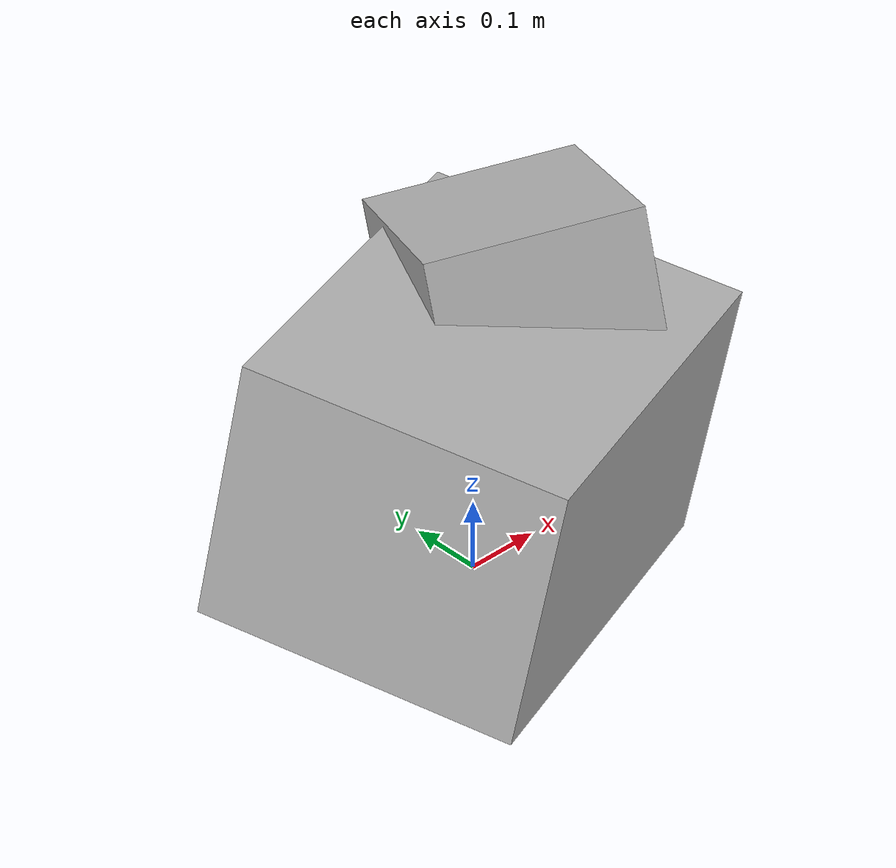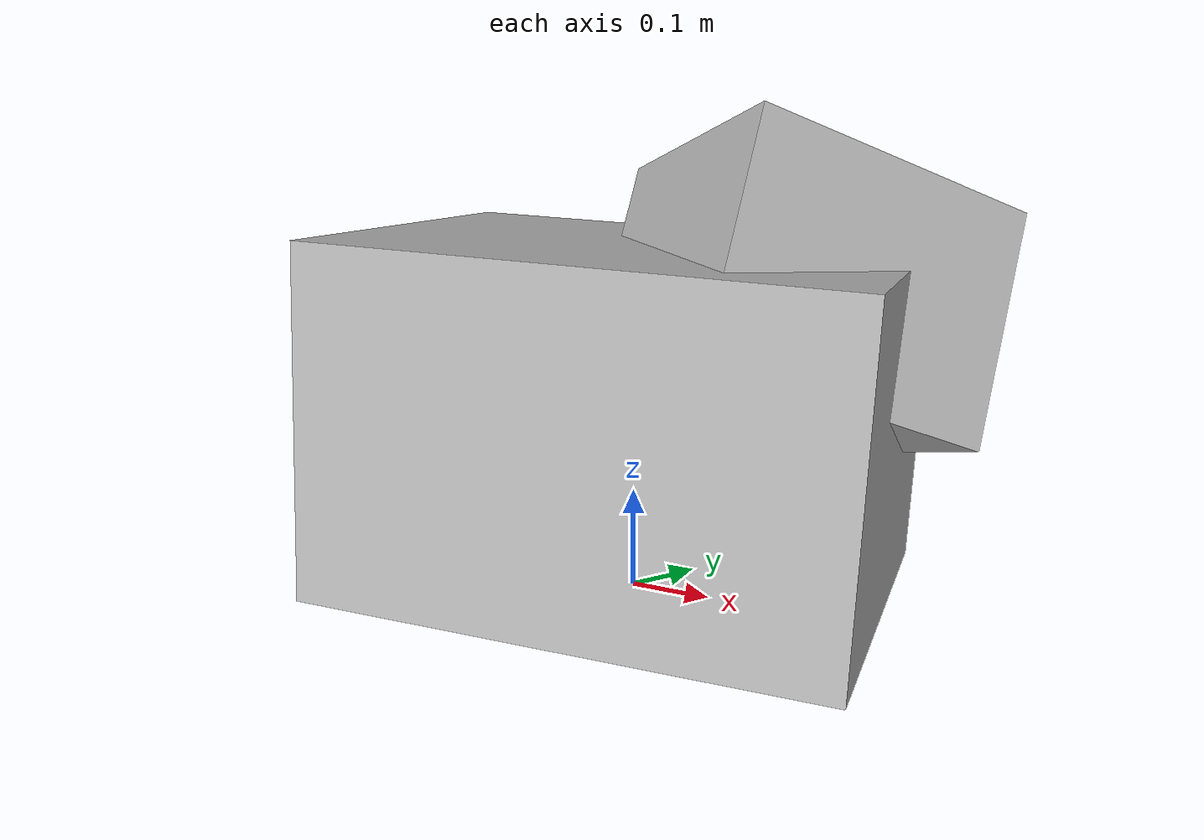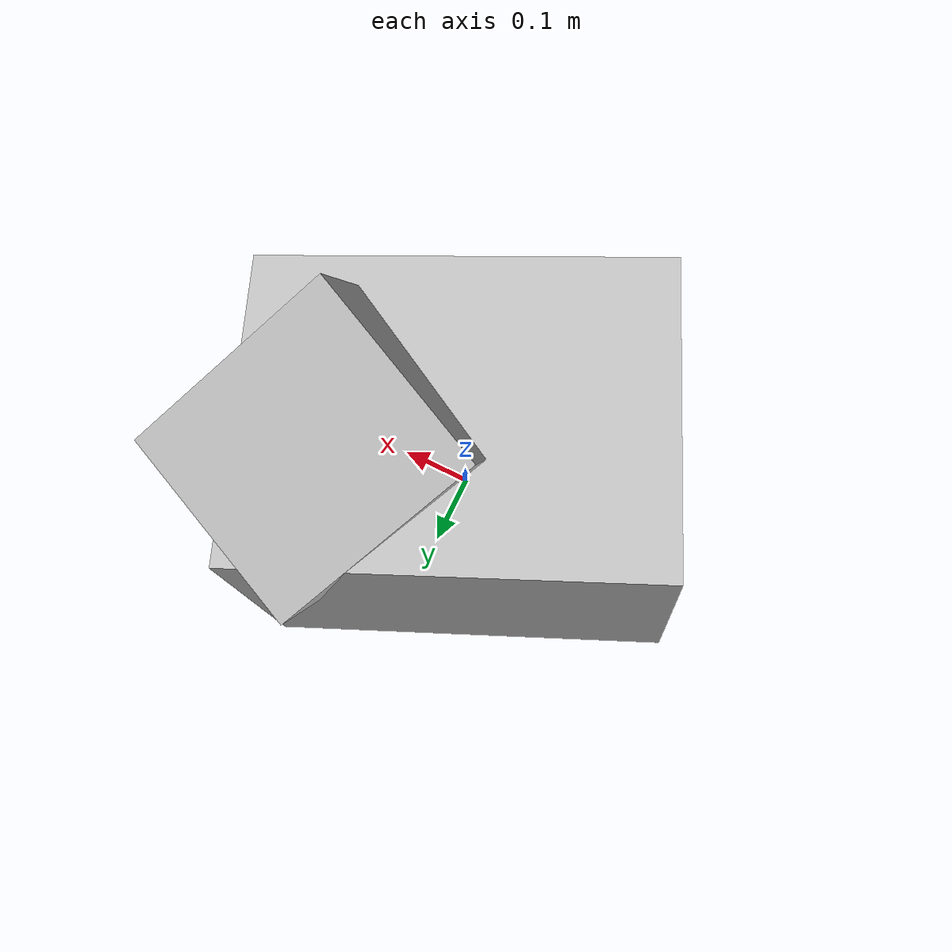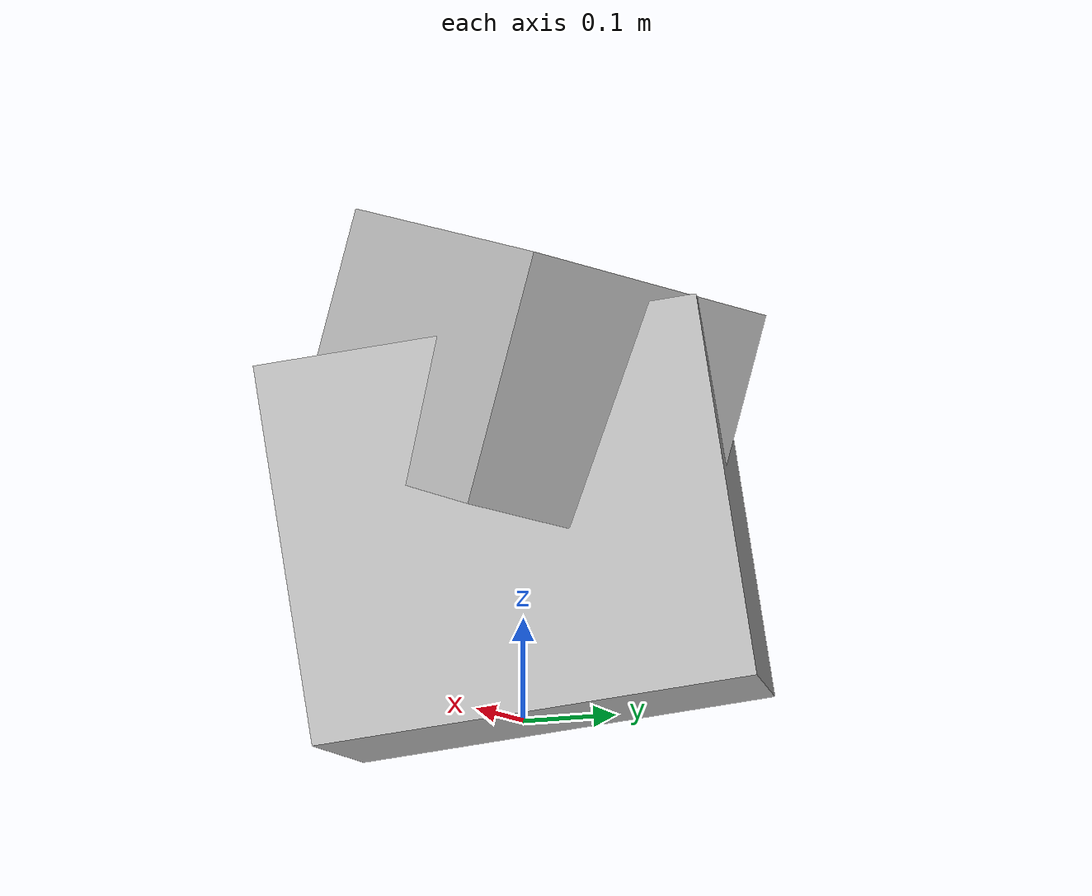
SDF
<?xml version="1.0" ?>
<sdf version="1.9">
  <model name="rock_small_a">
    <static>true</static>
    <link name="body">
      <visual name="v1">
        <pose>0 0 0.18 0.15 0.1 0.4</pose>
        <geometry><box><size>0.55 0.42 0.36</size></box></geometry>
        <material>
          <pbr><metal>
            <albedo_map>model://rock_small_a/materials/textures/rock_albedo.png</albedo_map>
            <normal_map>model://rock_small_a/materials/textures/rock_normal.png</normal_map>
            <roughness_map>model://rock_small_a/materials/textures/rock_roughness.png</roughness_map>
          </metal></pbr>
        </material>
      </visual>
      <visual name="v2">
        <pose>0.15 0.08 0.30 -0.1 0.3 1.1</pose>
        <geometry><box><size>0.30 0.28 0.24</size></box></geometry>
        <material>
          <pbr><metal>
            <albedo_map>model://rock_small_a/materials/textures/rock_albedo.png</albedo_map>
            <normal_map>model://rock_small_a/materials/textures/rock_normal.png</normal_map>
          </metal></pbr>
        </material>
      </visual>
      <collision name="col">
        <pose>0 0 0.2 0 0 0</pose>
        <geometry><box><size>0.6 0.5 0.4</size></box></geometry>
      </collision>
    </link>
  </model>
</sdf>
